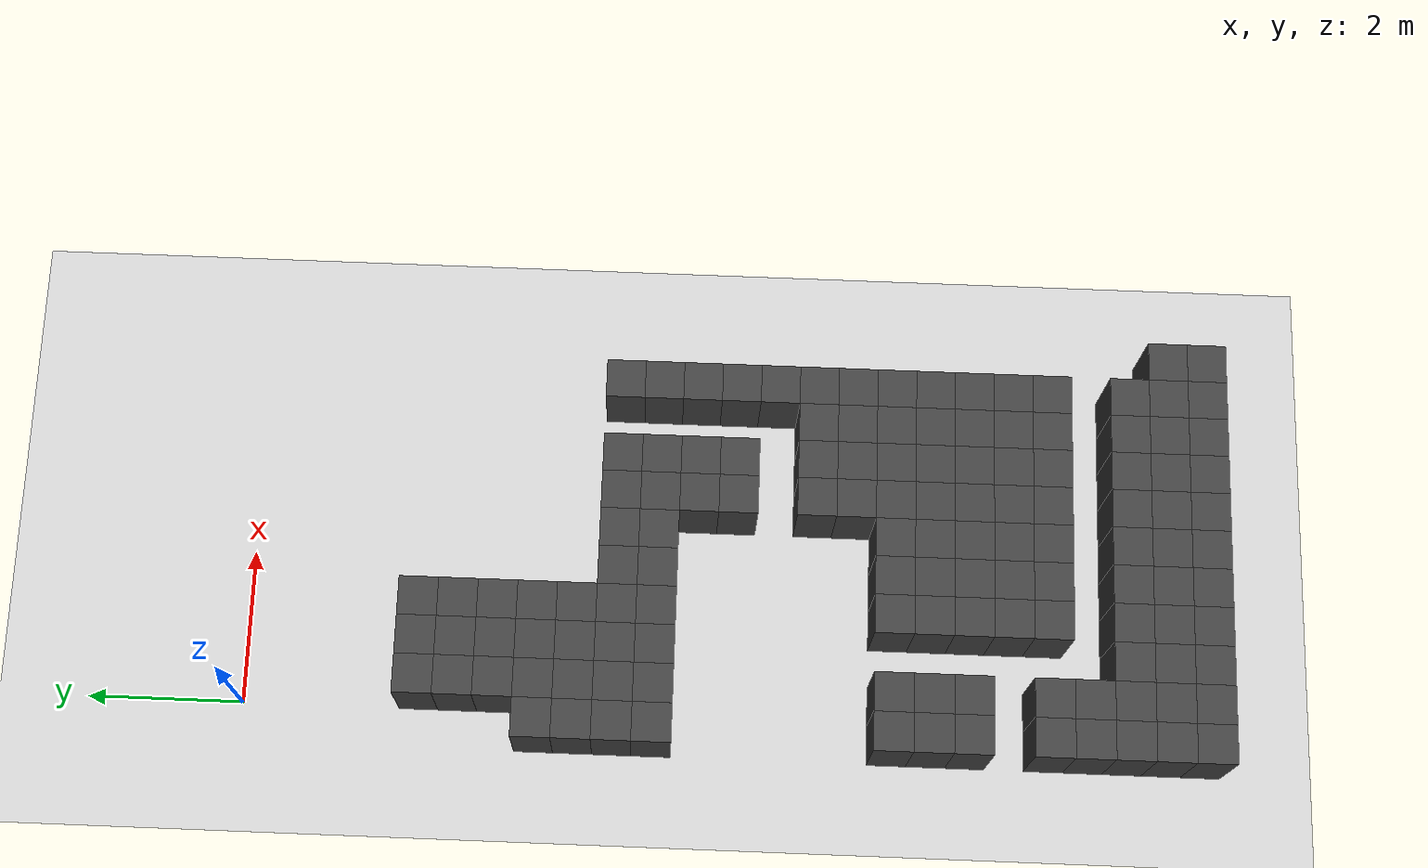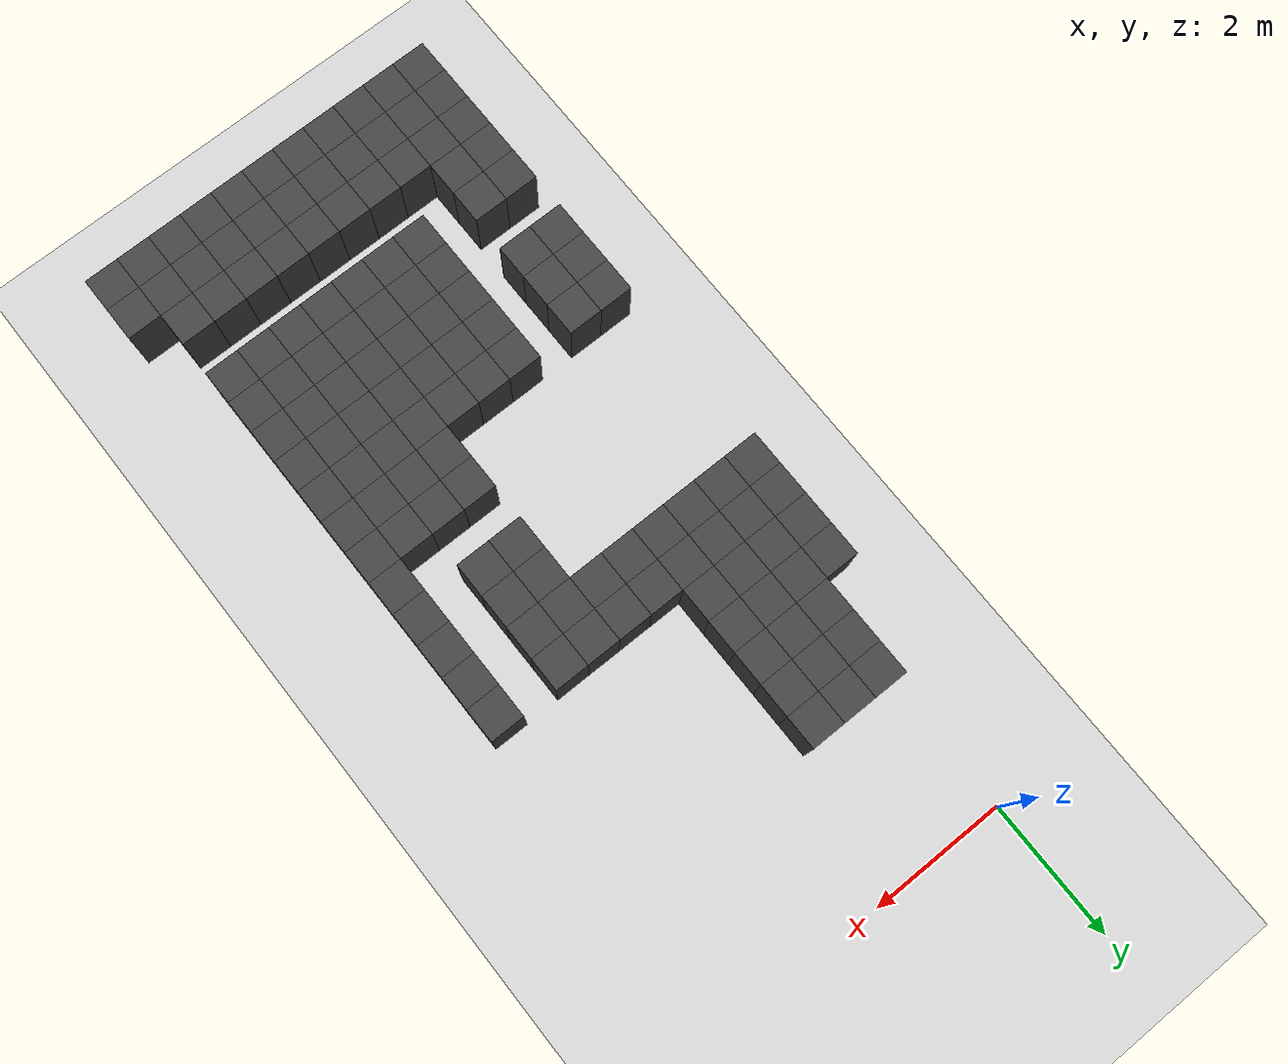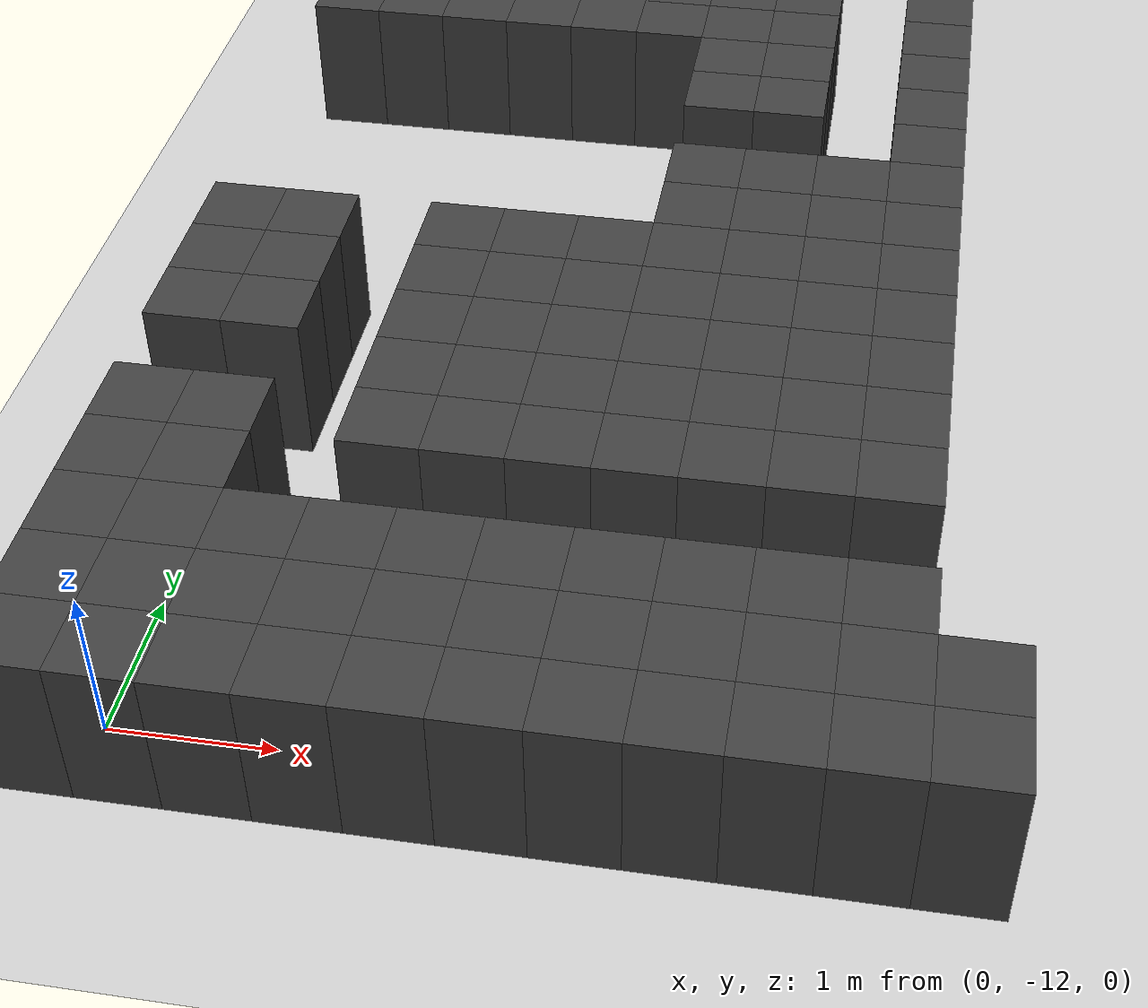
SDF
<sdf version="1.7">
 <world name="map_14056">
  <model name="ground_plane">
   <static>true</static>
   <link name="link">
    <collision name="collision">
     <geometry><plane><normal>0 0 1</normal><size>200 200</size></plane></geometry>
    </collision>
    <visual name="visual">
     <geometry><plane><normal>0 0 1</normal><size>200 200</size></plane></geometry>
     <material><ambient>0.8 0.8 0.8 1</ambient><diffuse>0.8 0.8 0.8 1</diffuse></material>
    </visual>
   </link>
  </model>
  <model name="maze_environment">
   <static>true</static>
   <link name="wall_1066">
    <pose>0.250 -2.250 0.500 0 0 0</pose>
    <collision name="col"><geometry><box><size>0.5 0.5 1.0</size></box></geometry></collision>
    <visual name="vis">
     <geometry><box><size>0.5 0.5 1.0</size></box></geometry>
     <material><ambient>0.15 0.15 0.15 1</ambient><diffuse>0.25 0.25 0.25 1</diffuse></material>
    </visual>
   </link>
   <link name="wall_1067">
    <pose>0.750 -2.250 0.500 0 0 0</pose>
    <collision name="col"><geometry><box><size>0.5 0.5 1.0</size></box></geometry></collision>
    <visual name="vis">
     <geometry><box><size>0.5 0.5 1.0</size></box></geometry>
     <material><ambient>0.15 0.15 0.15 1</ambient><diffuse>0.25 0.25 0.25 1</diffuse></material>
    </visual>
   </link>
   <link name="wall_1068">
    <pose>1.250 -2.250 0.500 0 0 0</pose>
    <collision name="col"><geometry><box><size>0.5 0.5 1.0</size></box></geometry></collision>
    <visual name="vis">
     <geometry><box><size>0.5 0.5 1.0</size></box></geometry>
     <material><ambient>0.15 0.15 0.15 1</ambient><diffuse>0.25 0.25 0.25 1</diffuse></material>
    </visual>
   </link>
   <link name="wall_1094">
    <pose>0.250 -2.750 0.500 0 0 0</pose>
    <collision name="col"><geometry><box><size>0.5 0.5 1.0</size></box></geometry></collision>
    <visual name="vis">
     <geometry><box><size>0.5 0.5 1.0</size></box></geometry>
     <material><ambient>0.15 0.15 0.15 1</ambient><diffuse>0.25 0.25 0.25 1</diffuse></material>
    </visual>
   </link>
   <link name="wall_1095">
    <pose>0.750 -2.750 0.500 0 0 0</pose>
    <collision name="col"><geometry><box><size>0.5 0.5 1.0</size></box></geometry></collision>
    <visual name="vis">
     <geometry><box><size>0.5 0.5 1.0</size></box></geometry>
     <material><ambient>0.15 0.15 0.15 1</ambient><diffuse>0.25 0.25 0.25 1</diffuse></material>
    </visual>
   </link>
   <link name="wall_1096">
    <pose>1.250 -2.750 0.500 0 0 0</pose>
    <collision name="col"><geometry><box><size>0.5 0.5 1.0</size></box></geometry></collision>
    <visual name="vis">
     <geometry><box><size>0.5 0.5 1.0</size></box></geometry>
     <material><ambient>0.15 0.15 0.15 1</ambient><diffuse>0.25 0.25 0.25 1</diffuse></material>
    </visual>
   </link>
   <link name="wall_1122">
    <pose>0.250 -3.250 0.500 0 0 0</pose>
    <collision name="col"><geometry><box><size>0.5 0.5 1.0</size></box></geometry></collision>
    <visual name="vis">
     <geometry><box><size>0.5 0.5 1.0</size></box></geometry>
     <material><ambient>0.15 0.15 0.15 1</ambient><diffuse>0.25 0.25 0.25 1</diffuse></material>
    </visual>
   </link>
   <link name="wall_1123">
    <pose>0.750 -3.250 0.500 0 0 0</pose>
    <collision name="col"><geometry><box><size>0.5 0.5 1.0</size></box></geometry></collision>
    <visual name="vis">
     <geometry><box><size>0.5 0.5 1.0</size></box></geometry>
     <material><ambient>0.15 0.15 0.15 1</ambient><diffuse>0.25 0.25 0.25 1</diffuse></material>
    </visual>
   </link>
   <link name="wall_1124">
    <pose>1.250 -3.250 0.500 0 0 0</pose>
    <collision name="col"><geometry><box><size>0.5 0.5 1.0</size></box></geometry></collision>
    <visual name="vis">
     <geometry><box><size>0.5 0.5 1.0</size></box></geometry>
     <material><ambient>0.15 0.15 0.15 1</ambient><diffuse>0.25 0.25 0.25 1</diffuse></material>
    </visual>
   </link>
   <link name="wall_1149">
    <pose>-0.250 -3.750 0.500 0 0 0</pose>
    <collision name="col"><geometry><box><size>0.5 0.5 1.0</size></box></geometry></collision>
    <visual name="vis">
     <geometry><box><size>0.5 0.5 1.0</size></box></geometry>
     <material><ambient>0.15 0.15 0.15 1</ambient><diffuse>0.25 0.25 0.25 1</diffuse></material>
    </visual>
   </link>
   <link name="wall_1150">
    <pose>0.250 -3.750 0.500 0 0 0</pose>
    <collision name="col"><geometry><box><size>0.5 0.5 1.0</size></box></geometry></collision>
    <visual name="vis">
     <geometry><box><size>0.5 0.5 1.0</size></box></geometry>
     <material><ambient>0.15 0.15 0.15 1</ambient><diffuse>0.25 0.25 0.25 1</diffuse></material>
    </visual>
   </link>
   <link name="wall_1151">
    <pose>0.750 -3.750 0.500 0 0 0</pose>
    <collision name="col"><geometry><box><size>0.5 0.5 1.0</size></box></geometry></collision>
    <visual name="vis">
     <geometry><box><size>0.5 0.5 1.0</size></box></geometry>
     <material><ambient>0.15 0.15 0.15 1</ambient><diffuse>0.25 0.25 0.25 1</diffuse></material>
    </visual>
   </link>
   <link name="wall_1152">
    <pose>1.250 -3.750 0.500 0 0 0</pose>
    <collision name="col"><geometry><box><size>0.5 0.5 1.0</size></box></geometry></collision>
    <visual name="vis">
     <geometry><box><size>0.5 0.5 1.0</size></box></geometry>
     <material><ambient>0.15 0.15 0.15 1</ambient><diffuse>0.25 0.25 0.25 1</diffuse></material>
    </visual>
   </link>
   <link name="wall_1181">
    <pose>-0.250 -4.250 0.500 0 0 0</pose>
    <collision name="col"><geometry><box><size>0.5 0.5 1.0</size></box></geometry></collision>
    <visual name="vis">
     <geometry><box><size>0.5 0.5 1.0</size></box></geometry>
     <material><ambient>0.15 0.15 0.15 1</ambient><diffuse>0.25 0.25 0.25 1</diffuse></material>
    </visual>
   </link>
   <link name="wall_1182">
    <pose>0.250 -4.250 0.500 0 0 0</pose>
    <collision name="col"><geometry><box><size>0.5 0.5 1.0</size></box></geometry></collision>
    <visual name="vis">
     <geometry><box><size>0.5 0.5 1.0</size></box></geometry>
     <material><ambient>0.15 0.15 0.15 1</ambient><diffuse>0.25 0.25 0.25 1</diffuse></material>
    </visual>
   </link>
   <link name="wall_1183">
    <pose>0.750 -4.250 0.500 0 0 0</pose>
    <collision name="col"><geometry><box><size>0.5 0.5 1.0</size></box></geometry></collision>
    <visual name="vis">
     <geometry><box><size>0.5 0.5 1.0</size></box></geometry>
     <material><ambient>0.15 0.15 0.15 1</ambient><diffuse>0.25 0.25 0.25 1</diffuse></material>
    </visual>
   </link>
   <link name="wall_1184">
    <pose>1.250 -4.250 0.500 0 0 0</pose>
    <collision name="col"><geometry><box><size>0.5 0.5 1.0</size></box></geometry></collision>
    <visual name="vis">
     <geometry><box><size>0.5 0.5 1.0</size></box></geometry>
     <material><ambient>0.15 0.15 0.15 1</ambient><diffuse>0.25 0.25 0.25 1</diffuse></material>
    </visual>
   </link>
   <link name="wall_1215">
    <pose>-0.250 -4.750 0.500 0 0 0</pose>
    <collision name="col"><geometry><box><size>0.5 0.5 1.0</size></box></geometry></collision>
    <visual name="vis">
     <geometry><box><size>0.5 0.5 1.0</size></box></geometry>
     <material><ambient>0.15 0.15 0.15 1</ambient><diffuse>0.25 0.25 0.25 1</diffuse></material>
    </visual>
   </link>
   <link name="wall_1216">
    <pose>0.250 -4.750 0.500 0 0 0</pose>
    <collision name="col"><geometry><box><size>0.5 0.5 1.0</size></box></geometry></collision>
    <visual name="vis">
     <geometry><box><size>0.5 0.5 1.0</size></box></geometry>
     <material><ambient>0.15 0.15 0.15 1</ambient><diffuse>0.25 0.25 0.25 1</diffuse></material>
    </visual>
   </link>
   <link name="wall_1217">
    <pose>0.750 -4.750 0.500 0 0 0</pose>
    <collision name="col"><geometry><box><size>0.5 0.5 1.0</size></box></geometry></collision>
    <visual name="vis">
     <geometry><box><size>0.5 0.5 1.0</size></box></geometry>
     <material><ambient>0.15 0.15 0.15 1</ambient><diffuse>0.25 0.25 0.25 1</diffuse></material>
    </visual>
   </link>
   <link name="wall_1218">
    <pose>1.250 -4.750 0.500 0 0 0</pose>
    <collision name="col"><geometry><box><size>0.5 0.5 1.0</size></box></geometry></collision>
    <visual name="vis">
     <geometry><box><size>0.5 0.5 1.0</size></box></geometry>
     <material><ambient>0.15 0.15 0.15 1</ambient><diffuse>0.25 0.25 0.25 1</diffuse></material>
    </visual>
   </link>
   <link name="wall_1219">
    <pose>1.750 -4.750 0.500 0 0 0</pose>
    <collision name="col"><geometry><box><size>0.5 0.5 1.0</size></box></geometry></collision>
    <visual name="vis">
     <geometry><box><size>0.5 0.5 1.0</size></box></geometry>
     <material><ambient>0.15 0.15 0.15 1</ambient><diffuse>0.25 0.25 0.25 1</diffuse></material>
    </visual>
   </link>
   <link name="wall_1220">
    <pose>2.250 -4.750 0.500 0 0 0</pose>
    <collision name="col"><geometry><box><size>0.5 0.5 1.0</size></box></geometry></collision>
    <visual name="vis">
     <geometry><box><size>0.5 0.5 1.0</size></box></geometry>
     <material><ambient>0.15 0.15 0.15 1</ambient><diffuse>0.25 0.25 0.25 1</diffuse></material>
    </visual>
   </link>
   <link name="wall_1221">
    <pose>2.750 -4.750 0.500 0 0 0</pose>
    <collision name="col"><geometry><box><size>0.5 0.5 1.0</size></box></geometry></collision>
    <visual name="vis">
     <geometry><box><size>0.5 0.5 1.0</size></box></geometry>
     <material><ambient>0.15 0.15 0.15 1</ambient><diffuse>0.25 0.25 0.25 1</diffuse></material>
    </visual>
   </link>
   <link name="wall_1222">
    <pose>3.250 -4.750 0.500 0 0 0</pose>
    <collision name="col"><geometry><box><size>0.5 0.5 1.0</size></box></geometry></collision>
    <visual name="vis">
     <geometry><box><size>0.5 0.5 1.0</size></box></geometry>
     <material><ambient>0.15 0.15 0.15 1</ambient><diffuse>0.25 0.25 0.25 1</diffuse></material>
    </visual>
   </link>
   <link name="wall_1223">
    <pose>4.250 -4.750 0.500 0 0 0</pose>
    <collision name="col"><geometry><box><size>0.5 0.5 1.0</size></box></geometry></collision>
    <visual name="vis">
     <geometry><box><size>0.5 0.5 1.0</size></box></geometry>
     <material><ambient>0.15 0.15 0.15 1</ambient><diffuse>0.25 0.25 0.25 1</diffuse></material>
    </visual>
   </link>
   <link name="wall_1256">
    <pose>-0.250 -5.250 0.500 0 0 0</pose>
    <collision name="col"><geometry><box><size>0.5 0.5 1.0</size></box></geometry></collision>
    <visual name="vis">
     <geometry><box><size>0.5 0.5 1.0</size></box></geometry>
     <material><ambient>0.15 0.15 0.15 1</ambient><diffuse>0.25 0.25 0.25 1</diffuse></material>
    </visual>
   </link>
   <link name="wall_1257">
    <pose>0.250 -5.250 0.500 0 0 0</pose>
    <collision name="col"><geometry><box><size>0.5 0.5 1.0</size></box></geometry></collision>
    <visual name="vis">
     <geometry><box><size>0.5 0.5 1.0</size></box></geometry>
     <material><ambient>0.15 0.15 0.15 1</ambient><diffuse>0.25 0.25 0.25 1</diffuse></material>
    </visual>
   </link>
   <link name="wall_1258">
    <pose>0.750 -5.250 0.500 0 0 0</pose>
    <collision name="col"><geometry><box><size>0.5 0.5 1.0</size></box></geometry></collision>
    <visual name="vis">
     <geometry><box><size>0.5 0.5 1.0</size></box></geometry>
     <material><ambient>0.15 0.15 0.15 1</ambient><diffuse>0.25 0.25 0.25 1</diffuse></material>
    </visual>
   </link>
   <link name="wall_1259">
    <pose>1.250 -5.250 0.500 0 0 0</pose>
    <collision name="col"><geometry><box><size>0.5 0.5 1.0</size></box></geometry></collision>
    <visual name="vis">
     <geometry><box><size>0.5 0.5 1.0</size></box></geometry>
     <material><ambient>0.15 0.15 0.15 1</ambient><diffuse>0.25 0.25 0.25 1</diffuse></material>
    </visual>
   </link>
   <link name="wall_1260">
    <pose>1.750 -5.250 0.500 0 0 0</pose>
    <collision name="col"><geometry><box><size>0.5 0.5 1.0</size></box></geometry></collision>
    <visual name="vis">
     <geometry><box><size>0.5 0.5 1.0</size></box></geometry>
     <material><ambient>0.15 0.15 0.15 1</ambient><diffuse>0.25 0.25 0.25 1</diffuse></material>
    </visual>
   </link>
   <link name="wall_1261">
    <pose>2.250 -5.250 0.500 0 0 0</pose>
    <collision name="col"><geometry><box><size>0.5 0.5 1.0</size></box></geometry></collision>
    <visual name="vis">
     <geometry><box><size>0.5 0.5 1.0</size></box></geometry>
     <material><ambient>0.15 0.15 0.15 1</ambient><diffuse>0.25 0.25 0.25 1</diffuse></material>
    </visual>
   </link>
   <link name="wall_1262">
    <pose>2.750 -5.250 0.500 0 0 0</pose>
    <collision name="col"><geometry><box><size>0.5 0.5 1.0</size></box></geometry></collision>
    <visual name="vis">
     <geometry><box><size>0.5 0.5 1.0</size></box></geometry>
     <material><ambient>0.15 0.15 0.15 1</ambient><diffuse>0.25 0.25 0.25 1</diffuse></material>
    </visual>
   </link>
   <link name="wall_1263">
    <pose>3.250 -5.250 0.500 0 0 0</pose>
    <collision name="col"><geometry><box><size>0.5 0.5 1.0</size></box></geometry></collision>
    <visual name="vis">
     <geometry><box><size>0.5 0.5 1.0</size></box></geometry>
     <material><ambient>0.15 0.15 0.15 1</ambient><diffuse>0.25 0.25 0.25 1</diffuse></material>
    </visual>
   </link>
   <link name="wall_1264">
    <pose>4.250 -5.250 0.500 0 0 0</pose>
    <collision name="col"><geometry><box><size>0.5 0.5 1.0</size></box></geometry></collision>
    <visual name="vis">
     <geometry><box><size>0.5 0.5 1.0</size></box></geometry>
     <material><ambient>0.15 0.15 0.15 1</ambient><diffuse>0.25 0.25 0.25 1</diffuse></material>
    </visual>
   </link>
   <link name="wall_1295">
    <pose>2.750 -5.750 0.500 0 0 0</pose>
    <collision name="col"><geometry><box><size>0.5 0.5 1.0</size></box></geometry></collision>
    <visual name="vis">
     <geometry><box><size>0.5 0.5 1.0</size></box></geometry>
     <material><ambient>0.15 0.15 0.15 1</ambient><diffuse>0.25 0.25 0.25 1</diffuse></material>
    </visual>
   </link>
   <link name="wall_1296">
    <pose>3.250 -5.750 0.500 0 0 0</pose>
    <collision name="col"><geometry><box><size>0.5 0.5 1.0</size></box></geometry></collision>
    <visual name="vis">
     <geometry><box><size>0.5 0.5 1.0</size></box></geometry>
     <material><ambient>0.15 0.15 0.15 1</ambient><diffuse>0.25 0.25 0.25 1</diffuse></material>
    </visual>
   </link>
   <link name="wall_1297">
    <pose>4.250 -5.750 0.500 0 0 0</pose>
    <collision name="col"><geometry><box><size>0.5 0.5 1.0</size></box></geometry></collision>
    <visual name="vis">
     <geometry><box><size>0.5 0.5 1.0</size></box></geometry>
     <material><ambient>0.15 0.15 0.15 1</ambient><diffuse>0.25 0.25 0.25 1</diffuse></material>
    </visual>
   </link>
   <link name="wall_1328">
    <pose>2.750 -6.250 0.500 0 0 0</pose>
    <collision name="col"><geometry><box><size>0.5 0.5 1.0</size></box></geometry></collision>
    <visual name="vis">
     <geometry><box><size>0.5 0.5 1.0</size></box></geometry>
     <material><ambient>0.15 0.15 0.15 1</ambient><diffuse>0.25 0.25 0.25 1</diffuse></material>
    </visual>
   </link>
   <link name="wall_1329">
    <pose>3.250 -6.250 0.500 0 0 0</pose>
    <collision name="col"><geometry><box><size>0.5 0.5 1.0</size></box></geometry></collision>
    <visual name="vis">
     <geometry><box><size>0.5 0.5 1.0</size></box></geometry>
     <material><ambient>0.15 0.15 0.15 1</ambient><diffuse>0.25 0.25 0.25 1</diffuse></material>
    </visual>
   </link>
   <link name="wall_1330">
    <pose>4.250 -6.250 0.500 0 0 0</pose>
    <collision name="col"><geometry><box><size>0.5 0.5 1.0</size></box></geometry></collision>
    <visual name="vis">
     <geometry><box><size>0.5 0.5 1.0</size></box></geometry>
     <material><ambient>0.15 0.15 0.15 1</ambient><diffuse>0.25 0.25 0.25 1</diffuse></material>
    </visual>
   </link>
   <link name="wall_1361">
    <pose>4.250 -6.750 0.500 0 0 0</pose>
    <collision name="col"><geometry><box><size>0.5 0.5 1.0</size></box></geometry></collision>
    <visual name="vis">
     <geometry><box><size>0.5 0.5 1.0</size></box></geometry>
     <material><ambient>0.15 0.15 0.15 1</ambient><diffuse>0.25 0.25 0.25 1</diffuse></material>
    </visual>
   </link>
   <link name="wall_1392">
    <pose>2.750 -7.250 0.500 0 0 0</pose>
    <collision name="col"><geometry><box><size>0.5 0.5 1.0</size></box></geometry></collision>
    <visual name="vis">
     <geometry><box><size>0.5 0.5 1.0</size></box></geometry>
     <material><ambient>0.15 0.15 0.15 1</ambient><diffuse>0.25 0.25 0.25 1</diffuse></material>
    </visual>
   </link>
   <link name="wall_1393">
    <pose>3.250 -7.250 0.500 0 0 0</pose>
    <collision name="col"><geometry><box><size>0.5 0.5 1.0</size></box></geometry></collision>
    <visual name="vis">
     <geometry><box><size>0.5 0.5 1.0</size></box></geometry>
     <material><ambient>0.15 0.15 0.15 1</ambient><diffuse>0.25 0.25 0.25 1</diffuse></material>
    </visual>
   </link>
   <link name="wall_1394">
    <pose>3.750 -7.250 0.500 0 0 0</pose>
    <collision name="col"><geometry><box><size>0.5 0.5 1.0</size></box></geometry></collision>
    <visual name="vis">
     <geometry><box><size>0.5 0.5 1.0</size></box></geometry>
     <material><ambient>0.15 0.15 0.15 1</ambient><diffuse>0.25 0.25 0.25 1</diffuse></material>
    </visual>
   </link>
   <link name="wall_1395">
    <pose>4.250 -7.250 0.500 0 0 0</pose>
    <collision name="col"><geometry><box><size>0.5 0.5 1.0</size></box></geometry></collision>
    <visual name="vis">
     <geometry><box><size>0.5 0.5 1.0</size></box></geometry>
     <material><ambient>0.15 0.15 0.15 1</ambient><diffuse>0.25 0.25 0.25 1</diffuse></material>
    </visual>
   </link>
   <link name="wall_1427">
    <pose>2.750 -7.750 0.500 0 0 0</pose>
    <collision name="col"><geometry><box><size>0.5 0.5 1.0</size></box></geometry></collision>
    <visual name="vis">
     <geometry><box><size>0.5 0.5 1.0</size></box></geometry>
     <material><ambient>0.15 0.15 0.15 1</ambient><diffuse>0.25 0.25 0.25 1</diffuse></material>
    </visual>
   </link>
   <link name="wall_1428">
    <pose>3.250 -7.750 0.500 0 0 0</pose>
    <collision name="col"><geometry><box><size>0.5 0.5 1.0</size></box></geometry></collision>
    <visual name="vis">
     <geometry><box><size>0.5 0.5 1.0</size></box></geometry>
     <material><ambient>0.15 0.15 0.15 1</ambient><diffuse>0.25 0.25 0.25 1</diffuse></material>
    </visual>
   </link>
   <link name="wall_1429">
    <pose>3.750 -7.750 0.500 0 0 0</pose>
    <collision name="col"><geometry><box><size>0.5 0.5 1.0</size></box></geometry></collision>
    <visual name="vis">
     <geometry><box><size>0.5 0.5 1.0</size></box></geometry>
     <material><ambient>0.15 0.15 0.15 1</ambient><diffuse>0.25 0.25 0.25 1</diffuse></material>
    </visual>
   </link>
   <link name="wall_1430">
    <pose>4.250 -7.750 0.500 0 0 0</pose>
    <collision name="col"><geometry><box><size>0.5 0.5 1.0</size></box></geometry></collision>
    <visual name="vis">
     <geometry><box><size>0.5 0.5 1.0</size></box></geometry>
     <material><ambient>0.15 0.15 0.15 1</ambient><diffuse>0.25 0.25 0.25 1</diffuse></material>
    </visual>
   </link>
   <link name="wall_1458">
    <pose>-0.250 -8.250 0.500 0 0 0</pose>
    <collision name="col"><geometry><box><size>0.5 0.5 1.0</size></box></geometry></collision>
    <visual name="vis">
     <geometry><box><size>0.5 0.5 1.0</size></box></geometry>
     <material><ambient>0.15 0.15 0.15 1</ambient><diffuse>0.25 0.25 0.25 1</diffuse></material>
    </visual>
   </link>
   <link name="wall_1459">
    <pose>0.250 -8.250 0.500 0 0 0</pose>
    <collision name="col"><geometry><box><size>0.5 0.5 1.0</size></box></geometry></collision>
    <visual name="vis">
     <geometry><box><size>0.5 0.5 1.0</size></box></geometry>
     <material><ambient>0.15 0.15 0.15 1</ambient><diffuse>0.25 0.25 0.25 1</diffuse></material>
    </visual>
   </link>
   <link name="wall_1460">
    <pose>1.250 -8.250 0.500 0 0 0</pose>
    <collision name="col"><geometry><box><size>0.5 0.5 1.0</size></box></geometry></collision>
    <visual name="vis">
     <geometry><box><size>0.5 0.5 1.0</size></box></geometry>
     <material><ambient>0.15 0.15 0.15 1</ambient><diffuse>0.25 0.25 0.25 1</diffuse></material>
    </visual>
   </link>
   <link name="wall_1461">
    <pose>1.750 -8.250 0.500 0 0 0</pose>
    <collision name="col"><geometry><box><size>0.5 0.5 1.0</size></box></geometry></collision>
    <visual name="vis">
     <geometry><box><size>0.5 0.5 1.0</size></box></geometry>
     <material><ambient>0.15 0.15 0.15 1</ambient><diffuse>0.25 0.25 0.25 1</diffuse></material>
    </visual>
   </link>
   <link name="wall_1462">
    <pose>2.250 -8.250 0.500 0 0 0</pose>
    <collision name="col"><geometry><box><size>0.5 0.5 1.0</size></box></geometry></collision>
    <visual name="vis">
     <geometry><box><size>0.5 0.5 1.0</size></box></geometry>
     <material><ambient>0.15 0.15 0.15 1</ambient><diffuse>0.25 0.25 0.25 1</diffuse></material>
    </visual>
   </link>
   <link name="wall_1463">
    <pose>2.750 -8.250 0.500 0 0 0</pose>
    <collision name="col"><geometry><box><size>0.5 0.5 1.0</size></box></geometry></collision>
    <visual name="vis">
     <geometry><box><size>0.5 0.5 1.0</size></box></geometry>
     <material><ambient>0.15 0.15 0.15 1</ambient><diffuse>0.25 0.25 0.25 1</diffuse></material>
    </visual>
   </link>
   <link name="wall_1464">
    <pose>3.250 -8.250 0.500 0 0 0</pose>
    <collision name="col"><geometry><box><size>0.5 0.5 1.0</size></box></geometry></collision>
    <visual name="vis">
     <geometry><box><size>0.5 0.5 1.0</size></box></geometry>
     <material><ambient>0.15 0.15 0.15 1</ambient><diffuse>0.25 0.25 0.25 1</diffuse></material>
    </visual>
   </link>
   <link name="wall_1465">
    <pose>3.750 -8.250 0.500 0 0 0</pose>
    <collision name="col"><geometry><box><size>0.5 0.5 1.0</size></box></geometry></collision>
    <visual name="vis">
     <geometry><box><size>0.5 0.5 1.0</size></box></geometry>
     <material><ambient>0.15 0.15 0.15 1</ambient><diffuse>0.25 0.25 0.25 1</diffuse></material>
    </visual>
   </link>
   <link name="wall_1466">
    <pose>4.250 -8.250 0.500 0 0 0</pose>
    <collision name="col"><geometry><box><size>0.5 0.5 1.0</size></box></geometry></collision>
    <visual name="vis">
     <geometry><box><size>0.5 0.5 1.0</size></box></geometry>
     <material><ambient>0.15 0.15 0.15 1</ambient><diffuse>0.25 0.25 0.25 1</diffuse></material>
    </visual>
   </link>
   <link name="wall_1494">
    <pose>-0.250 -8.750 0.500 0 0 0</pose>
    <collision name="col"><geometry><box><size>0.5 0.5 1.0</size></box></geometry></collision>
    <visual name="vis">
     <geometry><box><size>0.5 0.5 1.0</size></box></geometry>
     <material><ambient>0.15 0.15 0.15 1</ambient><diffuse>0.25 0.25 0.25 1</diffuse></material>
    </visual>
   </link>
   <link name="wall_1495">
    <pose>0.250 -8.750 0.500 0 0 0</pose>
    <collision name="col"><geometry><box><size>0.5 0.5 1.0</size></box></geometry></collision>
    <visual name="vis">
     <geometry><box><size>0.5 0.5 1.0</size></box></geometry>
     <material><ambient>0.15 0.15 0.15 1</ambient><diffuse>0.25 0.25 0.25 1</diffuse></material>
    </visual>
   </link>
   <link name="wall_1496">
    <pose>1.250 -8.750 0.500 0 0 0</pose>
    <collision name="col"><geometry><box><size>0.5 0.5 1.0</size></box></geometry></collision>
    <visual name="vis">
     <geometry><box><size>0.5 0.5 1.0</size></box></geometry>
     <material><ambient>0.15 0.15 0.15 1</ambient><diffuse>0.25 0.25 0.25 1</diffuse></material>
    </visual>
   </link>
   <link name="wall_1497">
    <pose>1.750 -8.750 0.500 0 0 0</pose>
    <collision name="col"><geometry><box><size>0.5 0.5 1.0</size></box></geometry></collision>
    <visual name="vis">
     <geometry><box><size>0.5 0.5 1.0</size></box></geometry>
     <material><ambient>0.15 0.15 0.15 1</ambient><diffuse>0.25 0.25 0.25 1</diffuse></material>
    </visual>
   </link>
   <link name="wall_1498">
    <pose>2.250 -8.750 0.500 0 0 0</pose>
    <collision name="col"><geometry><box><size>0.5 0.5 1.0</size></box></geometry></collision>
    <visual name="vis">
     <geometry><box><size>0.5 0.5 1.0</size></box></geometry>
     <material><ambient>0.15 0.15 0.15 1</ambient><diffuse>0.25 0.25 0.25 1</diffuse></material>
    </visual>
   </link>
   <link name="wall_1499">
    <pose>2.750 -8.750 0.500 0 0 0</pose>
    <collision name="col"><geometry><box><size>0.5 0.5 1.0</size></box></geometry></collision>
    <visual name="vis">
     <geometry><box><size>0.5 0.5 1.0</size></box></geometry>
     <material><ambient>0.15 0.15 0.15 1</ambient><diffuse>0.25 0.25 0.25 1</diffuse></material>
    </visual>
   </link>
   <link name="wall_1500">
    <pose>3.250 -8.750 0.500 0 0 0</pose>
    <collision name="col"><geometry><box><size>0.5 0.5 1.0</size></box></geometry></collision>
    <visual name="vis">
     <geometry><box><size>0.5 0.5 1.0</size></box></geometry>
     <material><ambient>0.15 0.15 0.15 1</ambient><diffuse>0.25 0.25 0.25 1</diffuse></material>
    </visual>
   </link>
   <link name="wall_1501">
    <pose>3.750 -8.750 0.500 0 0 0</pose>
    <collision name="col"><geometry><box><size>0.5 0.5 1.0</size></box></geometry></collision>
    <visual name="vis">
     <geometry><box><size>0.5 0.5 1.0</size></box></geometry>
     <material><ambient>0.15 0.15 0.15 1</ambient><diffuse>0.25 0.25 0.25 1</diffuse></material>
    </visual>
   </link>
   <link name="wall_1502">
    <pose>4.250 -8.750 0.500 0 0 0</pose>
    <collision name="col"><geometry><box><size>0.5 0.5 1.0</size></box></geometry></collision>
    <visual name="vis">
     <geometry><box><size>0.5 0.5 1.0</size></box></geometry>
     <material><ambient>0.15 0.15 0.15 1</ambient><diffuse>0.25 0.25 0.25 1</diffuse></material>
    </visual>
   </link>
   <link name="wall_1530">
    <pose>-0.250 -9.250 0.500 0 0 0</pose>
    <collision name="col"><geometry><box><size>0.5 0.5 1.0</size></box></geometry></collision>
    <visual name="vis">
     <geometry><box><size>0.5 0.5 1.0</size></box></geometry>
     <material><ambient>0.15 0.15 0.15 1</ambient><diffuse>0.25 0.25 0.25 1</diffuse></material>
    </visual>
   </link>
   <link name="wall_1531">
    <pose>0.250 -9.250 0.500 0 0 0</pose>
    <collision name="col"><geometry><box><size>0.5 0.5 1.0</size></box></geometry></collision>
    <visual name="vis">
     <geometry><box><size>0.5 0.5 1.0</size></box></geometry>
     <material><ambient>0.15 0.15 0.15 1</ambient><diffuse>0.25 0.25 0.25 1</diffuse></material>
    </visual>
   </link>
   <link name="wall_1532">
    <pose>1.250 -9.250 0.500 0 0 0</pose>
    <collision name="col"><geometry><box><size>0.5 0.5 1.0</size></box></geometry></collision>
    <visual name="vis">
     <geometry><box><size>0.5 0.5 1.0</size></box></geometry>
     <material><ambient>0.15 0.15 0.15 1</ambient><diffuse>0.25 0.25 0.25 1</diffuse></material>
    </visual>
   </link>
   <link name="wall_1533">
    <pose>1.750 -9.250 0.500 0 0 0</pose>
    <collision name="col"><geometry><box><size>0.5 0.5 1.0</size></box></geometry></collision>
    <visual name="vis">
     <geometry><box><size>0.5 0.5 1.0</size></box></geometry>
     <material><ambient>0.15 0.15 0.15 1</ambient><diffuse>0.25 0.25 0.25 1</diffuse></material>
    </visual>
   </link>
   <link name="wall_1534">
    <pose>2.250 -9.250 0.500 0 0 0</pose>
    <collision name="col"><geometry><box><size>0.5 0.5 1.0</size></box></geometry></collision>
    <visual name="vis">
     <geometry><box><size>0.5 0.5 1.0</size></box></geometry>
     <material><ambient>0.15 0.15 0.15 1</ambient><diffuse>0.25 0.25 0.25 1</diffuse></material>
    </visual>
   </link>
   <link name="wall_1535">
    <pose>2.750 -9.250 0.500 0 0 0</pose>
    <collision name="col"><geometry><box><size>0.5 0.5 1.0</size></box></geometry></collision>
    <visual name="vis">
     <geometry><box><size>0.5 0.5 1.0</size></box></geometry>
     <material><ambient>0.15 0.15 0.15 1</ambient><diffuse>0.25 0.25 0.25 1</diffuse></material>
    </visual>
   </link>
   <link name="wall_1536">
    <pose>3.250 -9.250 0.500 0 0 0</pose>
    <collision name="col"><geometry><box><size>0.5 0.5 1.0</size></box></geometry></collision>
    <visual name="vis">
     <geometry><box><size>0.5 0.5 1.0</size></box></geometry>
     <material><ambient>0.15 0.15 0.15 1</ambient><diffuse>0.25 0.25 0.25 1</diffuse></material>
    </visual>
   </link>
   <link name="wall_1537">
    <pose>3.750 -9.250 0.500 0 0 0</pose>
    <collision name="col"><geometry><box><size>0.5 0.5 1.0</size></box></geometry></collision>
    <visual name="vis">
     <geometry><box><size>0.5 0.5 1.0</size></box></geometry>
     <material><ambient>0.15 0.15 0.15 1</ambient><diffuse>0.25 0.25 0.25 1</diffuse></material>
    </visual>
   </link>
   <link name="wall_1538">
    <pose>4.250 -9.250 0.500 0 0 0</pose>
    <collision name="col"><geometry><box><size>0.5 0.5 1.0</size></box></geometry></collision>
    <visual name="vis">
     <geometry><box><size>0.5 0.5 1.0</size></box></geometry>
     <material><ambient>0.15 0.15 0.15 1</ambient><diffuse>0.25 0.25 0.25 1</diffuse></material>
    </visual>
   </link>
   <link name="wall_1572">
    <pose>1.250 -9.750 0.500 0 0 0</pose>
    <collision name="col"><geometry><box><size>0.5 0.5 1.0</size></box></geometry></collision>
    <visual name="vis">
     <geometry><box><size>0.5 0.5 1.0</size></box></geometry>
     <material><ambient>0.15 0.15 0.15 1</ambient><diffuse>0.25 0.25 0.25 1</diffuse></material>
    </visual>
   </link>
   <link name="wall_1573">
    <pose>1.750 -9.750 0.500 0 0 0</pose>
    <collision name="col"><geometry><box><size>0.5 0.5 1.0</size></box></geometry></collision>
    <visual name="vis">
     <geometry><box><size>0.5 0.5 1.0</size></box></geometry>
     <material><ambient>0.15 0.15 0.15 1</ambient><diffuse>0.25 0.25 0.25 1</diffuse></material>
    </visual>
   </link>
   <link name="wall_1574">
    <pose>2.250 -9.750 0.500 0 0 0</pose>
    <collision name="col"><geometry><box><size>0.5 0.5 1.0</size></box></geometry></collision>
    <visual name="vis">
     <geometry><box><size>0.5 0.5 1.0</size></box></geometry>
     <material><ambient>0.15 0.15 0.15 1</ambient><diffuse>0.25 0.25 0.25 1</diffuse></material>
    </visual>
   </link>
   <link name="wall_1575">
    <pose>2.750 -9.750 0.500 0 0 0</pose>
    <collision name="col"><geometry><box><size>0.5 0.5 1.0</size></box></geometry></collision>
    <visual name="vis">
     <geometry><box><size>0.5 0.5 1.0</size></box></geometry>
     <material><ambient>0.15 0.15 0.15 1</ambient><diffuse>0.25 0.25 0.25 1</diffuse></material>
    </visual>
   </link>
   <link name="wall_1576">
    <pose>3.250 -9.750 0.500 0 0 0</pose>
    <collision name="col"><geometry><box><size>0.5 0.5 1.0</size></box></geometry></collision>
    <visual name="vis">
     <geometry><box><size>0.5 0.5 1.0</size></box></geometry>
     <material><ambient>0.15 0.15 0.15 1</ambient><diffuse>0.25 0.25 0.25 1</diffuse></material>
    </visual>
   </link>
   <link name="wall_1577">
    <pose>3.750 -9.750 0.500 0 0 0</pose>
    <collision name="col"><geometry><box><size>0.5 0.5 1.0</size></box></geometry></collision>
    <visual name="vis">
     <geometry><box><size>0.5 0.5 1.0</size></box></geometry>
     <material><ambient>0.15 0.15 0.15 1</ambient><diffuse>0.25 0.25 0.25 1</diffuse></material>
    </visual>
   </link>
   <link name="wall_1578">
    <pose>4.250 -9.750 0.500 0 0 0</pose>
    <collision name="col"><geometry><box><size>0.5 0.5 1.0</size></box></geometry></collision>
    <visual name="vis">
     <geometry><box><size>0.5 0.5 1.0</size></box></geometry>
     <material><ambient>0.15 0.15 0.15 1</ambient><diffuse>0.25 0.25 0.25 1</diffuse></material>
    </visual>
   </link>
   <link name="wall_1606">
    <pose>-0.250 -10.250 0.500 0 0 0</pose>
    <collision name="col"><geometry><box><size>0.5 0.5 1.0</size></box></geometry></collision>
    <visual name="vis">
     <geometry><box><size>0.5 0.5 1.0</size></box></geometry>
     <material><ambient>0.15 0.15 0.15 1</ambient><diffuse>0.25 0.25 0.25 1</diffuse></material>
    </visual>
   </link>
   <link name="wall_1607">
    <pose>0.250 -10.250 0.500 0 0 0</pose>
    <collision name="col"><geometry><box><size>0.5 0.5 1.0</size></box></geometry></collision>
    <visual name="vis">
     <geometry><box><size>0.5 0.5 1.0</size></box></geometry>
     <material><ambient>0.15 0.15 0.15 1</ambient><diffuse>0.25 0.25 0.25 1</diffuse></material>
    </visual>
   </link>
   <link name="wall_1608">
    <pose>1.250 -10.250 0.500 0 0 0</pose>
    <collision name="col"><geometry><box><size>0.5 0.5 1.0</size></box></geometry></collision>
    <visual name="vis">
     <geometry><box><size>0.5 0.5 1.0</size></box></geometry>
     <material><ambient>0.15 0.15 0.15 1</ambient><diffuse>0.25 0.25 0.25 1</diffuse></material>
    </visual>
   </link>
   <link name="wall_1609">
    <pose>1.750 -10.250 0.500 0 0 0</pose>
    <collision name="col"><geometry><box><size>0.5 0.5 1.0</size></box></geometry></collision>
    <visual name="vis">
     <geometry><box><size>0.5 0.5 1.0</size></box></geometry>
     <material><ambient>0.15 0.15 0.15 1</ambient><diffuse>0.25 0.25 0.25 1</diffuse></material>
    </visual>
   </link>
   <link name="wall_1610">
    <pose>2.250 -10.250 0.500 0 0 0</pose>
    <collision name="col"><geometry><box><size>0.5 0.5 1.0</size></box></geometry></collision>
    <visual name="vis">
     <geometry><box><size>0.5 0.5 1.0</size></box></geometry>
     <material><ambient>0.15 0.15 0.15 1</ambient><diffuse>0.25 0.25 0.25 1</diffuse></material>
    </visual>
   </link>
   <link name="wall_1611">
    <pose>2.750 -10.250 0.500 0 0 0</pose>
    <collision name="col"><geometry><box><size>0.5 0.5 1.0</size></box></geometry></collision>
    <visual name="vis">
     <geometry><box><size>0.5 0.5 1.0</size></box></geometry>
     <material><ambient>0.15 0.15 0.15 1</ambient><diffuse>0.25 0.25 0.25 1</diffuse></material>
    </visual>
   </link>
   <link name="wall_1612">
    <pose>3.250 -10.250 0.500 0 0 0</pose>
    <collision name="col"><geometry><box><size>0.5 0.5 1.0</size></box></geometry></collision>
    <visual name="vis">
     <geometry><box><size>0.5 0.5 1.0</size></box></geometry>
     <material><ambient>0.15 0.15 0.15 1</ambient><diffuse>0.25 0.25 0.25 1</diffuse></material>
    </visual>
   </link>
   <link name="wall_1613">
    <pose>3.750 -10.250 0.500 0 0 0</pose>
    <collision name="col"><geometry><box><size>0.5 0.5 1.0</size></box></geometry></collision>
    <visual name="vis">
     <geometry><box><size>0.5 0.5 1.0</size></box></geometry>
     <material><ambient>0.15 0.15 0.15 1</ambient><diffuse>0.25 0.25 0.25 1</diffuse></material>
    </visual>
   </link>
   <link name="wall_1614">
    <pose>4.250 -10.250 0.500 0 0 0</pose>
    <collision name="col"><geometry><box><size>0.5 0.5 1.0</size></box></geometry></collision>
    <visual name="vis">
     <geometry><box><size>0.5 0.5 1.0</size></box></geometry>
     <material><ambient>0.15 0.15 0.15 1</ambient><diffuse>0.25 0.25 0.25 1</diffuse></material>
    </visual>
   </link>
   <link name="wall_1642">
    <pose>-0.250 -10.750 0.500 0 0 0</pose>
    <collision name="col"><geometry><box><size>0.5 0.5 1.0</size></box></geometry></collision>
    <visual name="vis">
     <geometry><box><size>0.5 0.5 1.0</size></box></geometry>
     <material><ambient>0.15 0.15 0.15 1</ambient><diffuse>0.25 0.25 0.25 1</diffuse></material>
    </visual>
   </link>
   <link name="wall_1643">
    <pose>0.250 -10.750 0.500 0 0 0</pose>
    <collision name="col"><geometry><box><size>0.5 0.5 1.0</size></box></geometry></collision>
    <visual name="vis">
     <geometry><box><size>0.5 0.5 1.0</size></box></geometry>
     <material><ambient>0.15 0.15 0.15 1</ambient><diffuse>0.25 0.25 0.25 1</diffuse></material>
    </visual>
   </link>
   <link name="wall_1667">
    <pose>-0.250 -11.250 0.500 0 0 0</pose>
    <collision name="col"><geometry><box><size>0.5 0.5 1.0</size></box></geometry></collision>
    <visual name="vis">
     <geometry><box><size>0.5 0.5 1.0</size></box></geometry>
     <material><ambient>0.15 0.15 0.15 1</ambient><diffuse>0.25 0.25 0.25 1</diffuse></material>
    </visual>
   </link>
   <link name="wall_1668">
    <pose>0.250 -11.250 0.500 0 0 0</pose>
    <collision name="col"><geometry><box><size>0.5 0.5 1.0</size></box></geometry></collision>
    <visual name="vis">
     <geometry><box><size>0.5 0.5 1.0</size></box></geometry>
     <material><ambient>0.15 0.15 0.15 1</ambient><diffuse>0.25 0.25 0.25 1</diffuse></material>
    </visual>
   </link>
   <link name="wall_1669">
    <pose>0.750 -11.250 0.500 0 0 0</pose>
    <collision name="col"><geometry><box><size>0.5 0.5 1.0</size></box></geometry></collision>
    <visual name="vis">
     <geometry><box><size>0.5 0.5 1.0</size></box></geometry>
     <material><ambient>0.15 0.15 0.15 1</ambient><diffuse>0.25 0.25 0.25 1</diffuse></material>
    </visual>
   </link>
   <link name="wall_1670">
    <pose>1.250 -11.250 0.500 0 0 0</pose>
    <collision name="col"><geometry><box><size>0.5 0.5 1.0</size></box></geometry></collision>
    <visual name="vis">
     <geometry><box><size>0.5 0.5 1.0</size></box></geometry>
     <material><ambient>0.15 0.15 0.15 1</ambient><diffuse>0.25 0.25 0.25 1</diffuse></material>
    </visual>
   </link>
   <link name="wall_1671">
    <pose>1.750 -11.250 0.500 0 0 0</pose>
    <collision name="col"><geometry><box><size>0.5 0.5 1.0</size></box></geometry></collision>
    <visual name="vis">
     <geometry><box><size>0.5 0.5 1.0</size></box></geometry>
     <material><ambient>0.15 0.15 0.15 1</ambient><diffuse>0.25 0.25 0.25 1</diffuse></material>
    </visual>
   </link>
   <link name="wall_1672">
    <pose>2.250 -11.250 0.500 0 0 0</pose>
    <collision name="col"><geometry><box><size>0.5 0.5 1.0</size></box></geometry></collision>
    <visual name="vis">
     <geometry><box><size>0.5 0.5 1.0</size></box></geometry>
     <material><ambient>0.15 0.15 0.15 1</ambient><diffuse>0.25 0.25 0.25 1</diffuse></material>
    </visual>
   </link>
   <link name="wall_1673">
    <pose>2.750 -11.250 0.500 0 0 0</pose>
    <collision name="col"><geometry><box><size>0.5 0.5 1.0</size></box></geometry></collision>
    <visual name="vis">
     <geometry><box><size>0.5 0.5 1.0</size></box></geometry>
     <material><ambient>0.15 0.15 0.15 1</ambient><diffuse>0.25 0.25 0.25 1</diffuse></material>
    </visual>
   </link>
   <link name="wall_1674">
    <pose>3.250 -11.250 0.500 0 0 0</pose>
    <collision name="col"><geometry><box><size>0.5 0.5 1.0</size></box></geometry></collision>
    <visual name="vis">
     <geometry><box><size>0.5 0.5 1.0</size></box></geometry>
     <material><ambient>0.15 0.15 0.15 1</ambient><diffuse>0.25 0.25 0.25 1</diffuse></material>
    </visual>
   </link>
   <link name="wall_1675">
    <pose>3.750 -11.250 0.500 0 0 0</pose>
    <collision name="col"><geometry><box><size>0.5 0.5 1.0</size></box></geometry></collision>
    <visual name="vis">
     <geometry><box><size>0.5 0.5 1.0</size></box></geometry>
     <material><ambient>0.15 0.15 0.15 1</ambient><diffuse>0.25 0.25 0.25 1</diffuse></material>
    </visual>
   </link>
   <link name="wall_1676">
    <pose>4.250 -11.250 0.500 0 0 0</pose>
    <collision name="col"><geometry><box><size>0.5 0.5 1.0</size></box></geometry></collision>
    <visual name="vis">
     <geometry><box><size>0.5 0.5 1.0</size></box></geometry>
     <material><ambient>0.15 0.15 0.15 1</ambient><diffuse>0.25 0.25 0.25 1</diffuse></material>
    </visual>
   </link>
   <link name="wall_1703">
    <pose>-0.250 -11.750 0.500 0 0 0</pose>
    <collision name="col"><geometry><box><size>0.5 0.5 1.0</size></box></geometry></collision>
    <visual name="vis">
     <geometry><box><size>0.5 0.5 1.0</size></box></geometry>
     <material><ambient>0.15 0.15 0.15 1</ambient><diffuse>0.25 0.25 0.25 1</diffuse></material>
    </visual>
   </link>
   <link name="wall_1704">
    <pose>0.250 -11.750 0.500 0 0 0</pose>
    <collision name="col"><geometry><box><size>0.5 0.5 1.0</size></box></geometry></collision>
    <visual name="vis">
     <geometry><box><size>0.5 0.5 1.0</size></box></geometry>
     <material><ambient>0.15 0.15 0.15 1</ambient><diffuse>0.25 0.25 0.25 1</diffuse></material>
    </visual>
   </link>
   <link name="wall_1705">
    <pose>0.750 -11.750 0.500 0 0 0</pose>
    <collision name="col"><geometry><box><size>0.5 0.5 1.0</size></box></geometry></collision>
    <visual name="vis">
     <geometry><box><size>0.5 0.5 1.0</size></box></geometry>
     <material><ambient>0.15 0.15 0.15 1</ambient><diffuse>0.25 0.25 0.25 1</diffuse></material>
    </visual>
   </link>
   <link name="wall_1706">
    <pose>1.250 -11.750 0.500 0 0 0</pose>
    <collision name="col"><geometry><box><size>0.5 0.5 1.0</size></box></geometry></collision>
    <visual name="vis">
     <geometry><box><size>0.5 0.5 1.0</size></box></geometry>
     <material><ambient>0.15 0.15 0.15 1</ambient><diffuse>0.25 0.25 0.25 1</diffuse></material>
    </visual>
   </link>
   <link name="wall_1707">
    <pose>1.750 -11.750 0.500 0 0 0</pose>
    <collision name="col"><geometry><box><size>0.5 0.5 1.0</size></box></geometry></collision>
    <visual name="vis">
     <geometry><box><size>0.5 0.5 1.0</size></box></geometry>
     <material><ambient>0.15 0.15 0.15 1</ambient><diffuse>0.25 0.25 0.25 1</diffuse></material>
    </visual>
   </link>
   <link name="wall_1708">
    <pose>2.250 -11.750 0.500 0 0 0</pose>
    <collision name="col"><geometry><box><size>0.5 0.5 1.0</size></box></geometry></collision>
    <visual name="vis">
     <geometry><box><size>0.5 0.5 1.0</size></box></geometry>
     <material><ambient>0.15 0.15 0.15 1</ambient><diffuse>0.25 0.25 0.25 1</diffuse></material>
    </visual>
   </link>
   <link name="wall_1709">
    <pose>2.750 -11.750 0.500 0 0 0</pose>
    <collision name="col"><geometry><box><size>0.5 0.5 1.0</size></box></geometry></collision>
    <visual name="vis">
     <geometry><box><size>0.5 0.5 1.0</size></box></geometry>
     <material><ambient>0.15 0.15 0.15 1</ambient><diffuse>0.25 0.25 0.25 1</diffuse></material>
    </visual>
   </link>
   <link name="wall_1710">
    <pose>3.250 -11.750 0.500 0 0 0</pose>
    <collision name="col"><geometry><box><size>0.5 0.5 1.0</size></box></geometry></collision>
    <visual name="vis">
     <geometry><box><size>0.5 0.5 1.0</size></box></geometry>
     <material><ambient>0.15 0.15 0.15 1</ambient><diffuse>0.25 0.25 0.25 1</diffuse></material>
    </visual>
   </link>
   <link name="wall_1711">
    <pose>3.750 -11.750 0.500 0 0 0</pose>
    <collision name="col"><geometry><box><size>0.5 0.5 1.0</size></box></geometry></collision>
    <visual name="vis">
     <geometry><box><size>0.5 0.5 1.0</size></box></geometry>
     <material><ambient>0.15 0.15 0.15 1</ambient><diffuse>0.25 0.25 0.25 1</diffuse></material>
    </visual>
   </link>
   <link name="wall_1712">
    <pose>4.250 -11.750 0.500 0 0 0</pose>
    <collision name="col"><geometry><box><size>0.5 0.5 1.0</size></box></geometry></collision>
    <visual name="vis">
     <geometry><box><size>0.5 0.5 1.0</size></box></geometry>
     <material><ambient>0.15 0.15 0.15 1</ambient><diffuse>0.25 0.25 0.25 1</diffuse></material>
    </visual>
   </link>
   <link name="wall_1713">
    <pose>4.750 -11.750 0.500 0 0 0</pose>
    <collision name="col"><geometry><box><size>0.5 0.5 1.0</size></box></geometry></collision>
    <visual name="vis">
     <geometry><box><size>0.5 0.5 1.0</size></box></geometry>
     <material><ambient>0.15 0.15 0.15 1</ambient><diffuse>0.25 0.25 0.25 1</diffuse></material>
    </visual>
   </link>
   <link name="wall_1750">
    <pose>-0.250 -12.250 0.500 0 0 0</pose>
    <collision name="col"><geometry><box><size>0.5 0.5 1.0</size></box></geometry></collision>
    <visual name="vis">
     <geometry><box><size>0.5 0.5 1.0</size></box></geometry>
     <material><ambient>0.15 0.15 0.15 1</ambient><diffuse>0.25 0.25 0.25 1</diffuse></material>
    </visual>
   </link>
   <link name="wall_1751">
    <pose>0.250 -12.250 0.500 0 0 0</pose>
    <collision name="col"><geometry><box><size>0.5 0.5 1.0</size></box></geometry></collision>
    <visual name="vis">
     <geometry><box><size>0.5 0.5 1.0</size></box></geometry>
     <material><ambient>0.15 0.15 0.15 1</ambient><diffuse>0.25 0.25 0.25 1</diffuse></material>
    </visual>
   </link>
   <link name="wall_1752">
    <pose>0.750 -12.250 0.500 0 0 0</pose>
    <collision name="col"><geometry><box><size>0.5 0.5 1.0</size></box></geometry></collision>
    <visual name="vis">
     <geometry><box><size>0.5 0.5 1.0</size></box></geometry>
     <material><ambient>0.15 0.15 0.15 1</ambient><diffuse>0.25 0.25 0.25 1</diffuse></material>
    </visual>
   </link>
   <link name="wall_1753">
    <pose>1.250 -12.250 0.500 0 0 0</pose>
    <collision name="col"><geometry><box><size>0.5 0.5 1.0</size></box></geometry></collision>
    <visual name="vis">
     <geometry><box><size>0.5 0.5 1.0</size></box></geometry>
     <material><ambient>0.15 0.15 0.15 1</ambient><diffuse>0.25 0.25 0.25 1</diffuse></material>
    </visual>
   </link>
   <link name="wall_1754">
    <pose>1.750 -12.250 0.500 0 0 0</pose>
    <collision name="col"><geometry><box><size>0.5 0.5 1.0</size></box></geometry></collision>
    <visual name="vis">
     <geometry><box><size>0.5 0.5 1.0</size></box></geometry>
     <material><ambient>0.15 0.15 0.15 1</ambient><diffuse>0.25 0.25 0.25 1</diffuse></material>
    </visual>
   </link>
   <link name="wall_1755">
    <pose>2.250 -12.250 0.500 0 0 0</pose>
    <collision name="col"><geometry><box><size>0.5 0.5 1.0</size></box></geometry></collision>
    <visual name="vis">
     <geometry><box><size>0.5 0.5 1.0</size></box></geometry>
     <material><ambient>0.15 0.15 0.15 1</ambient><diffuse>0.25 0.25 0.25 1</diffuse></material>
    </visual>
   </link>
   <link name="wall_1756">
    <pose>2.750 -12.250 0.500 0 0 0</pose>
    <collision name="col"><geometry><box><size>0.5 0.5 1.0</size></box></geometry></collision>
    <visual name="vis">
     <geometry><box><size>0.5 0.5 1.0</size></box></geometry>
     <material><ambient>0.15 0.15 0.15 1</ambient><diffuse>0.25 0.25 0.25 1</diffuse></material>
    </visual>
   </link>
   <link name="wall_1757">
    <pose>3.250 -12.250 0.500 0 0 0</pose>
    <collision name="col"><geometry><box><size>0.5 0.5 1.0</size></box></geometry></collision>
    <visual name="vis">
     <geometry><box><size>0.5 0.5 1.0</size></box></geometry>
     <material><ambient>0.15 0.15 0.15 1</ambient><diffuse>0.25 0.25 0.25 1</diffuse></material>
    </visual>
   </link>
   <link name="wall_1758">
    <pose>3.750 -12.250 0.500 0 0 0</pose>
    <collision name="col"><geometry><box><size>0.5 0.5 1.0</size></box></geometry></collision>
    <visual name="vis">
     <geometry><box><size>0.5 0.5 1.0</size></box></geometry>
     <material><ambient>0.15 0.15 0.15 1</ambient><diffuse>0.25 0.25 0.25 1</diffuse></material>
    </visual>
   </link>
   <link name="wall_1759">
    <pose>4.250 -12.250 0.500 0 0 0</pose>
    <collision name="col"><geometry><box><size>0.5 0.5 1.0</size></box></geometry></collision>
    <visual name="vis">
     <geometry><box><size>0.5 0.5 1.0</size></box></geometry>
     <material><ambient>0.15 0.15 0.15 1</ambient><diffuse>0.25 0.25 0.25 1</diffuse></material>
    </visual>
   </link>
   <link name="wall_1760">
    <pose>4.750 -12.250 0.500 0 0 0</pose>
    <collision name="col"><geometry><box><size>0.5 0.5 1.0</size></box></geometry></collision>
    <visual name="vis">
     <geometry><box><size>0.5 0.5 1.0</size></box></geometry>
     <material><ambient>0.15 0.15 0.15 1</ambient><diffuse>0.25 0.25 0.25 1</diffuse></material>
    </visual>
   </link>
  </model>
 </world>
</sdf>
